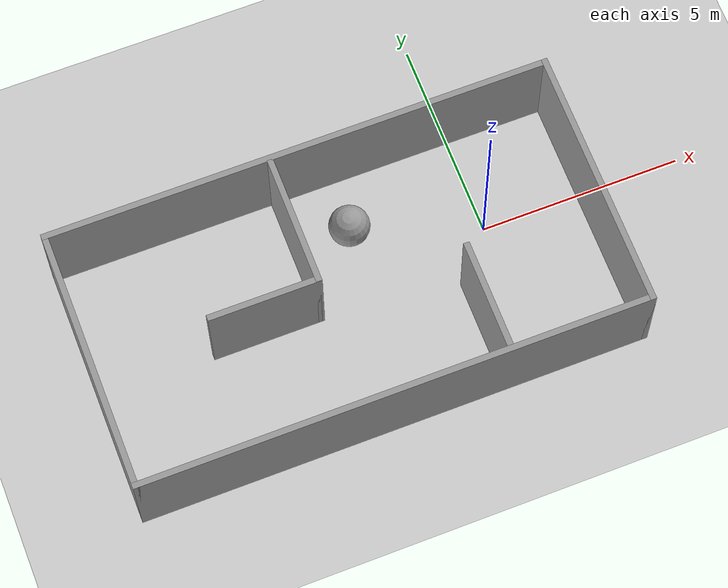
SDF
<sdf version="1.7">
 <world name="default">
  <light name="sun" type="directional">
   <pose>0 0 10 0 -0 0</pose>
   <diffuse>0.8 0.8 0.8 1</diffuse>
   <specular>0.2 0.2 0.2 1</specular>
   <attenuation>
    <range>1000</range>
    <constant>0.9</constant>
    <linear>0.01</linear>
    <quadratic>0.001</quadratic>
   </attenuation>
   <direction>-0.5 0.1 -0.9</direction>
   <spot><inner_angle>0</inner_angle><outer_angle>0</outer_angle><falloff>0</falloff></spot>
  </light>
  <model name="ground_plane">
   <static>1</static>
   <link name="link">
    <collision name="collision">
     <geometry><plane><normal>0 0 1</normal><size>100 100</size></plane></geometry>
     <surface><friction><ode><mu>100</mu><mu2>50</mu2></ode></friction></surface>
    </collision>
    <visual name="visual">
     <cast_shadows>0</cast_shadows>
     <geometry><plane><normal>0 0 1</normal><size>100 100</size></plane></geometry>
     <material>
      <script><uri>file://media/materials/scripts/gazebo.material</uri><name>Gazebo/Grey</name></script>
     </material>
    </visual>
   </link>
  </model>
  <gravity>0 0 -9.8</gravity>
  <magnetic_field>6e-06 2.3e-05 -4.2e-05</magnetic_field>
  <atmosphere type="adiabatic"/>
  <physics type="ode">
   <max_step_size>0.001</max_step_size>
   <real_time_factor>1</real_time_factor>
   <real_time_update_rate>1000</real_time_update_rate>
  </physics>
  <scene><ambient>0.4 0.4 0.4 1</ambient><background>0.7 0.7 0.7 1</background><shadows>1</shadows></scene>
  <audio><device>default</device></audio>
  <spherical_coordinates>
   <surface_model>EARTH_WGS84</surface_model>
   <latitude_deg>0</latitude_deg>
   <longitude_deg>0</longitude_deg>
   <elevation>0</elevation>
   <heading_deg>0</heading_deg>
  </spherical_coordinates>
  <model name="Untitled">
   <pose>-3.70443 -0.683486 0 0 -0 0</pose>
   <link name="Wall_1">
    <collision name="Wall_1_Collision">
     <geometry><box><size>6.5 0.15 2.5</size></box></geometry>
     <pose>0 0 1.25 0 -0 0</pose>
    </collision>
    <visual name="Wall_1_Visual">
     <pose>0 0 1.25 0 -0 0</pose>
     <geometry><box><size>6.5 0.15 2.5</size></box></geometry>
     <material>
      <script><uri>file://media/materials/scripts/gazebo.material</uri><name>Gazebo/Grey</name></script>
      <ambient>1 1 1 1</ambient>
     </material>
     <meta><layer>0</layer></meta>
    </visual>
    <pose>-6.175 0 0 0 -0 -1.5708</pose>
   </link>
   <link name="Wall_2">
    <collision name="Wall_2_Collision">
     <geometry><box><size>12.5 0.15 2.5</size></box></geometry>
     <pose>0 0 1.25 0 -0 0</pose>
    </collision>
    <visual name="Wall_2_Visual">
     <pose>0 0 1.25 0 -0 0</pose>
     <geometry><box><size>12.5 0.15 2.5</size></box></geometry>
     <material>
      <script><uri>file://media/materials/scripts/gazebo.material</uri><name>Gazebo/Grey</name></script>
      <ambient>1 1 1 1</ambient>
     </material>
     <meta><layer>0</layer></meta>
    </visual>
    <pose>0 -3.175 0 0 -0 0</pose>
   </link>
   <link name="Wall_3">
    <collision name="Wall_3_Collision">
     <geometry><box><size>6.5 0.15 2.5</size></box></geometry>
     <pose>0 0 1.25 0 -0 0</pose>
    </collision>
    <visual name="Wall_3_Visual">
     <pose>0 0 1.25 0 -0 0</pose>
     <geometry><box><size>6.5 0.15 2.5</size></box></geometry>
     <material>
      <script><uri>file://media/materials/scripts/gazebo.material</uri><name>Gazebo/Grey</name></script>
      <ambient>1 1 1 1</ambient>
     </material>
     <meta><layer>0</layer></meta>
    </visual>
    <pose>6.175 0 0 0 -0 1.5708</pose>
   </link>
   <link name="Wall_4">
    <collision name="Wall_4_Collision">
     <geometry><box><size>12.5 0.15 2.5</size></box></geometry>
     <pose>0 0 1.25 0 -0 0</pose>
    </collision>
    <visual name="Wall_4_Visual">
     <pose>0 0 1.25 0 -0 0</pose>
     <geometry><box><size>12.5 0.15 2.5</size></box></geometry>
     <material>
      <script><uri>file://media/materials/scripts/gazebo.material</uri><name>Gazebo/Grey</name></script>
      <ambient>1 1 1 1</ambient>
     </material>
     <meta><layer>0</layer></meta>
    </visual>
    <pose>0 3.175 0 0 -0 3.14159</pose>
   </link>
   <link name="Wall_6">
    <collision name="Wall_6_Collision">
     <geometry><box><size>3.25 0.15 2.5</size></box></geometry>
     <pose>0 0 1.25 0 -0 0</pose>
    </collision>
    <visual name="Wall_6_Visual">
     <pose>0 0 1.25 0 -0 0</pose>
     <geometry><box><size>3.25 0.15 2.5</size></box></geometry>
     <material>
      <script><uri>file://media/materials/scripts/gazebo.material</uri><name>Gazebo/Grey</name></script>
      <ambient>1 1 1 1</ambient>
     </material>
     <meta><layer>0</layer></meta>
    </visual>
    <pose>-0.713497 1.50363 0 0 -0 -1.5708</pose>
   </link>
   <link name="Wall_7">
    <collision name="Wall_7_Collision">
     <geometry><box><size>2.75 0.15 2.5</size></box></geometry>
     <pose>0 0 1.25 0 -0 0</pose>
    </collision>
    <visual name="Wall_7_Visual">
     <pose>0 0 1.25 0 -0 0</pose>
     <geometry><box><size>2.75 0.15 2.5</size></box></geometry>
     <material>
      <script><uri>file://media/materials/scripts/gazebo.material</uri><name>Gazebo/Grey</name></script>
      <ambient>1 1 1 1</ambient>
     </material>
     <meta><layer>0</layer></meta>
    </visual>
    <pose>-2.0135 -0.046367 0 0 -0 3.14159</pose>
   </link>
   <link name="Wall_9">
    <collision name="Wall_9_Collision">
     <geometry><box><size>2.75 0.15 2.5</size></box></geometry>
     <pose>0 0 1.25 0 -0 0</pose>
    </collision>
    <visual name="Wall_9_Visual">
     <pose>0 0 1.25 0 -0 0</pose>
     <geometry><box><size>2.75 0.15 2.5</size></box></geometry>
     <material>
      <script><uri>file://media/materials/scripts/gazebo.material</uri><name>Gazebo/Grey</name></script>
      <ambient>1 1 1 1</ambient>
     </material>
     <meta><layer>0</layer></meta>
    </visual>
    <pose>2.73897 -1.80743 0 0 -0 1.5708</pose>
   </link>
   <static>1</static>
  </model>
  <model name="unit_sphere">
   <pose>-3.01626 1.0471 0.5 0 -0 0</pose>
   <link name="link">
    <inertial>
     <mass>1</mass>
     <inertia><ixx>0.1</ixx><ixy>0</ixy><ixz>0</ixz><iyy>0.1</iyy><iyz>0</iyz><izz>0.1</izz></inertia>
    </inertial>
    <collision name="collision"><geometry><sphere><radius>0.5</radius></sphere></geometry></collision>
    <visual name="visual">
     <geometry><sphere><radius>0.5</radius></sphere></geometry>
     <material>
      <script><name>Gazebo/Grey</name><uri>file://media/materials/scripts/gazebo.material</uri></script>
     </material>
    </visual>
   </link>
  </model>
 </world>
</sdf>
